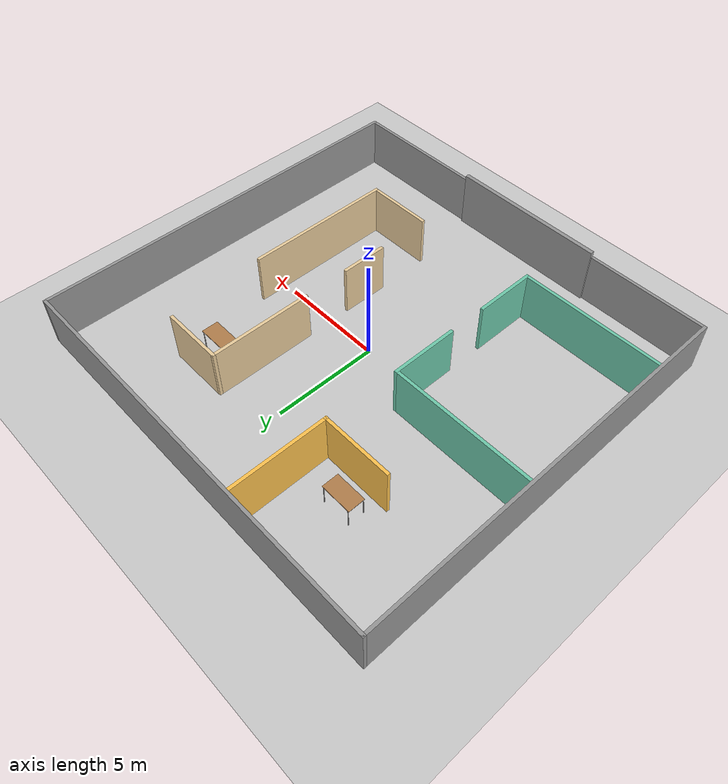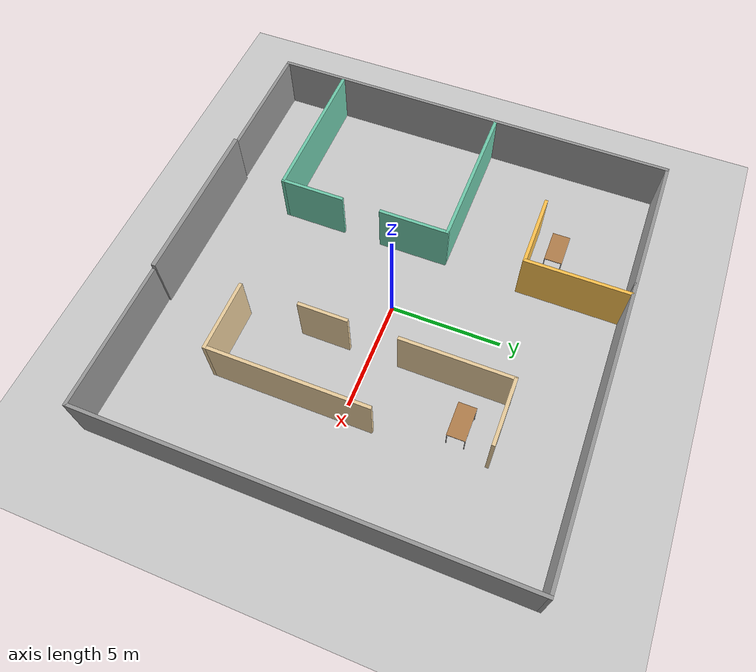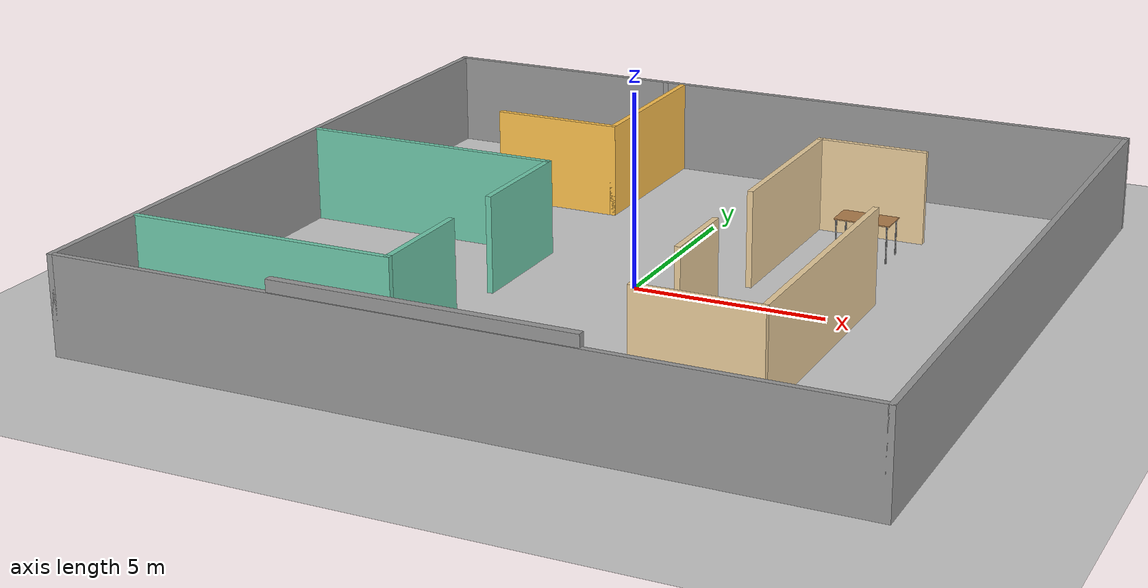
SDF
<sdf version="1.6">
 <world name="building">
  <light name="sun" type="directional">
   <pose>0 0 10 0 -0 0</pose>
   <diffuse>0.8 0.8 0.8 1</diffuse>
   <specular>0.2 0.2 0.2 1</specular>
   <attenuation>
    <range>1000</range>
    <constant>0.9</constant>
    <linear>0.01</linear>
    <quadratic>0.001</quadratic>
   </attenuation>
   <direction>-0.5 0.1 -0.9</direction>
  </light>
  <model name="ground_plane">
   <static>1</static>
   <link name="link">
    <collision name="collision">
     <geometry><plane><normal>0 0 1</normal><size>100 100</size></plane></geometry>
     <surface><friction><ode><mu>100</mu><mu2>50</mu2></ode></friction></surface>
    </collision>
    <visual name="visual">
     <cast_shadows>0</cast_shadows>
     <geometry><plane><normal>0 0 1</normal><size>100 100</size></plane></geometry>
     <material>
      <script><uri>file://media/materials/scripts/gazebo.material</uri><name>Gazebo/Grey</name></script>
     </material>
    </visual>
   </link>
  </model>
  <gravity>0 0 -9.8</gravity>
  <magnetic_field>6e-06 2.3e-05 -4.2e-05</magnetic_field>
  <atmosphere type="adiabatic"/>
  <physics name="default_physics" default="0" type="ode">
   <max_step_size>0.001</max_step_size>
   <real_time_factor>1</real_time_factor>
   <real_time_update_rate>1000</real_time_update_rate>
  </physics>
  <scene><ambient>0.4 0.4 0.4 1</ambient><background>0.7 0.7 0.7 1</background><shadows>1</shadows></scene>
  <spherical_coordinates>
   <surface_model>EARTH_WGS84</surface_model>
   <latitude_deg>0</latitude_deg>
   <longitude_deg>0</longitude_deg>
   <elevation>0</elevation>
   <heading_deg>0</heading_deg>
  </spherical_coordinates>
  <model name="rooms">
   <pose>-0.113605 0.01714 0 0 -0 0</pose>
   <link name="Wall_10">
    <collision name="Wall_10_Collision">
     <geometry><box><size>20 0.15 2.5</size></box></geometry>
     <pose>0 0 1.25 0 -0 0</pose>
    </collision>
    <visual name="Wall_10_Visual">
     <pose>0 0 1.25 0 -0 0</pose>
     <geometry><box><size>20 0.15 2.5</size></box></geometry>
     <material>
      <script><uri>file://media/materials/scripts/gazebo.material</uri><name>Gazebo/Grey</name></script>
      <ambient>1 1 1 1</ambient>
     </material>
     <meta><layer>0</layer></meta>
    </visual>
    <pose>0 9.55 0 0 -0 3.14159</pose>
   </link>
   <link name="Wall_11">
    <collision name="Wall_11_Collision">
     <geometry><box><size>19.25 0.15 2.5</size></box></geometry>
     <pose>0 0 1.25 0 -0 0</pose>
    </collision>
    <visual name="Wall_11_Visual">
     <pose>0 0 1.25 0 -0 0</pose>
     <geometry><box><size>19.25 0.15 2.5</size></box></geometry>
     <material>
      <script><uri>file://media/materials/scripts/gazebo.material</uri><name>Gazebo/Grey</name></script>
      <ambient>1 1 1 1</ambient>
     </material>
     <meta><layer>0</layer></meta>
    </visual>
    <pose>-9.925 0 0 0 0 -1.5708</pose>
   </link>
   <link name="Wall_13">
    <collision name="Wall_13_Collision">
     <geometry><box><size>20 0.15 2.5</size></box></geometry>
     <pose>0 0 1.25 0 -0 0</pose>
    </collision>
    <visual name="Wall_13_Visual">
     <pose>0 0 1.25 0 -0 0</pose>
     <geometry><box><size>20 0.15 2.5</size></box></geometry>
     <material>
      <script><uri>file://media/materials/scripts/gazebo.material</uri><name>Gazebo/Grey</name></script>
      <ambient>1 1 1 1</ambient>
     </material>
     <meta><layer>0</layer></meta>
    </visual>
    <pose>0 -9.55 0 0 -0 0</pose>
   </link>
   <link name="Wall_14">
    <collision name="Wall_14_Collision">
     <geometry><box><size>19.25 0.15 2.5</size></box></geometry>
     <pose>0 0 1.25 0 -0 0</pose>
    </collision>
    <visual name="Wall_14_Visual">
     <pose>0 0 1.25 0 -0 0</pose>
     <geometry><box><size>19.25 0.15 2.5</size></box></geometry>
     <material>
      <script><uri>file://media/materials/scripts/gazebo.material</uri><name>Gazebo/Grey</name></script>
      <ambient>1 1 1 1</ambient>
     </material>
     <meta><layer>0</layer></meta>
    </visual>
    <pose>9.925 0 0 0 -0 1.5708</pose>
   </link>
   <link name="Wall_20">
    <collision name="Wall_20_Collision">
     <geometry><box><size>0.15 0.15 2.5</size></box></geometry>
     <pose>0 0 1.25 0 -0 0</pose>
    </collision>
    <visual name="Wall_20_Visual">
     <pose>0 0 1.25 0 -0 0</pose>
     <geometry><box><size>0.15 0.15 2.5</size></box></geometry>
     <material>
      <script><uri>file://media/materials/scripts/gazebo.material</uri><name>Gazebo/Grey</name></script>
      <ambient>1 1 1 1</ambient>
     </material>
     <meta><layer>0</layer></meta>
    </visual>
    <pose>-3.31473 9.54696 0 0 -0 0</pose>
   </link>
   <link name="Wall_22">
    <collision name="Wall_22_Collision">
     <geometry><box><size>3.5 0.15 2.5</size></box></geometry>
     <pose>0 0 1.25 0 -0 0</pose>
    </collision>
    <visual name="Wall_22_Visual">
     <pose>0 0 1.25 0 -0 0</pose>
     <geometry><box><size>3.5 0.15 2.5</size></box></geometry>
     <material>
      <script><uri>file://media/materials/scripts/gazebo.material</uri><name>Gazebo/Grey</name></script>
      <ambient>1 0.764706 0.305882 1</ambient>
     </material>
     <meta><layer>0</layer></meta>
    </visual>
    <pose>-4.46621 4.88306 0 0 -0 0</pose>
   </link>
   <link name="Wall_23">
    <collision name="Wall_23_Collision">
     <geometry><box><size>4.75 0.15 2.5</size></box></geometry>
     <pose>0 0 1.25 0 -0 0</pose>
    </collision>
    <visual name="Wall_23_Visual">
     <pose>0 0 1.25 0 -0 0</pose>
     <geometry><box><size>4.75 0.15 2.5</size></box></geometry>
     <material>
      <script><uri>file://media/materials/scripts/gazebo.material</uri><name>Gazebo/Grey</name></script>
      <ambient>1 0.764706 0.305882 1</ambient>
     </material>
     <meta><layer>0</layer></meta>
    </visual>
    <pose>-2.79121 7.18306 0 0 -0 1.5708</pose>
   </link>
   <link name="Wall_25">
    <collision name="Wall_25_Collision">
     <geometry><box><size>7 0.15 2.5</size></box></geometry>
     <pose>0 0 1.25 0 -0 0</pose>
    </collision>
    <visual name="Wall_25_Visual">
     <pose>0 0 1.25 0 -0 0</pose>
     <geometry><box><size>7 0.15 2.5</size></box></geometry>
     <material>
      <script><uri>file://media/materials/scripts/gazebo.material</uri><name>Gazebo/Grey</name></script>
      <ambient>0.435294 0.796078 0.67451 1</ambient>
     </material>
     <meta><layer>0</layer></meta>
    </visual>
    <pose>-6.3916 1.34724 0 0 -0 0</pose>
   </link>
   <link name="Wall_26">
    <collision name="Wall_26_Collision">
     <geometry><box><size>3.25 0.15 2.5</size></box></geometry>
     <pose>0 0 1.25 0 -0 0</pose>
    </collision>
    <visual name="Wall_26_Visual">
     <pose>0 0 1.25 0 -0 0</pose>
     <geometry><box><size>3.25 0.15 2.5</size></box></geometry>
     <material>
      <script><uri>file://media/materials/scripts/gazebo.material</uri><name>Gazebo/Grey</name></script>
      <ambient>0.435294 0.796078 0.67451 1</ambient>
     </material>
     <meta><layer>0</layer></meta>
    </visual>
    <pose>-2.9666 -0.202758 0 0 0 -1.5708</pose>
   </link>
   <link name="Wall_28">
    <collision name="Wall_28_Collision">
     <geometry><box><size>3 0.15 2.5</size></box></geometry>
     <pose>0 0 1.25 0 -0 0</pose>
    </collision>
    <visual name="Wall_28_Visual">
     <pose>0 0 1.25 0 -0 0</pose>
     <geometry><box><size>3 0.15 2.5</size></box></geometry>
     <material>
      <script><uri>file://media/materials/scripts/gazebo.material</uri><name>Gazebo/Grey</name></script>
      <ambient>0.435294 0.796078 0.67451 1</ambient>
     </material>
     <meta><layer>0</layer></meta>
    </visual>
    <pose>-2.97758 -5.10234 0 0 0 -1.5708</pose>
   </link>
   <link name="Wall_32">
    <collision name="Wall_32_Collision">
     <geometry><box><size>7 0.15 2.5</size></box></geometry>
     <pose>0 0 1.25 0 -0 0</pose>
    </collision>
    <visual name="Wall_32_Visual">
     <pose>0 0 1.25 0 -0 0</pose>
     <geometry><box><size>7 0.15 2.5</size></box></geometry>
     <material>
      <script><uri>file://media/materials/scripts/gazebo.material</uri><name>Gazebo/Grey</name></script>
      <ambient>0.435294 0.796078 0.67451 1</ambient>
     </material>
     <meta><layer>0</layer></meta>
    </visual>
    <pose>-6.40258 -6.52734 0 0 -0 3.14159</pose>
   </link>
   <link name="Wall_34">
    <collision name="Wall_34_Collision">
     <geometry><box><size>3 0.15 2.5</size></box></geometry>
     <pose>0 0 1.25 0 -0 0</pose>
    </collision>
    <visual name="Wall_34_Visual">
     <pose>0 0 1.25 0 -0 0</pose>
     <geometry><box><size>3 0.15 2.5</size></box></geometry>
     <material>
      <script><uri>file://media/materials/scripts/gazebo.material</uri><name>Gazebo/Grey</name></script>
      <ambient>0.921569 0.807843 0.615686 1</ambient>
     </material>
     <meta><layer>0</layer></meta>
    </visual>
    <pose>4.06477 6.1392 0 0 -0 3.14159</pose>
   </link>
   <link name="Wall_35">
    <collision name="Wall_35_Collision">
     <geometry><box><size>5 0.15 2.5</size></box></geometry>
     <pose>0 0 1.25 0 -0 0</pose>
    </collision>
    <visual name="Wall_35_Visual">
     <pose>0 0 1.25 0 -0 0</pose>
     <geometry><box><size>5 0.15 2.5</size></box></geometry>
     <material>
      <script><uri>file://media/materials/scripts/gazebo.material</uri><name>Gazebo/Grey</name></script>
      <ambient>0.921569 0.807843 0.615686 1</ambient>
     </material>
     <meta><layer>0</layer></meta>
    </visual>
    <pose>2.63977 3.71421 0 0 0 -1.5708</pose>
   </link>
   <link name="Wall_37">
    <collision name="Wall_37_Collision">
     <geometry><box><size>7.25 0.15 2.5</size></box></geometry>
     <pose>0 0 1.25 0 -0 0</pose>
    </collision>
    <visual name="Wall_37_Visual">
     <pose>0 0 1.25 0 -0 0</pose>
     <geometry><box><size>7.25 0.15 2.5</size></box></geometry>
     <material>
      <script><uri>file://media/materials/scripts/gazebo.material</uri><name>Gazebo/Grey</name></script>
      <ambient>0.921569 0.807843 0.615686 1</ambient>
     </material>
     <meta><layer>0</layer></meta>
    </visual>
    <pose>5.81544 -2.24928 0 0 0 -1.5708</pose>
   </link>
   <link name="Wall_38">
    <collision name="Wall_38_Collision">
     <geometry><box><size>3.25 0.15 2.5</size></box></geometry>
     <pose>0 0 1.25 0 -0 0</pose>
    </collision>
    <visual name="Wall_38_Visual">
     <pose>0 0 1.25 0 -0 0</pose>
     <geometry><box><size>3.25 0.15 2.5</size></box></geometry>
     <material>
      <script><uri>file://media/materials/scripts/gazebo.material</uri><name>Gazebo/Grey</name></script>
      <ambient>0.921569 0.807843 0.615686 1</ambient>
     </material>
     <meta><layer>0</layer></meta>
    </visual>
    <pose>4.26544 -5.79928 0 0 -0 3.14159</pose>
   </link>
   <link name="Wall_40">
    <collision name="Wall_40_Collision">
     <geometry><box><size>2.25 0.15 2.5</size></box></geometry>
     <pose>0 0 1.25 0 -0 0</pose>
    </collision>
    <visual name="Wall_40_Visual">
     <pose>0 0 1.25 0 -0 0</pose>
     <geometry><box><size>2.25 0.15 2.5</size></box></geometry>
     <material>
      <script><uri>file://media/materials/scripts/gazebo.material</uri><name>Gazebo/Grey</name></script>
      <ambient>0.921569 0.807843 0.615686 1</ambient>
     </material>
     <meta><layer>0</layer></meta>
    </visual>
    <pose>2.65181 -2.07548 0 0 0 -1.5708</pose>
   </link>
   <static>1</static>
  </model>
  <model name="table">
   <static>1</static>
   <link name="link">
    <collision name="surface">
     <pose>0 0 1 0 -0 0</pose>
     <geometry><box><size>1.5 0.8 0.03</size></box></geometry>
     <surface><friction><ode><mu>0.6</mu><mu2>0.6</mu2></ode></friction></surface>
    </collision>
    <visual name="visual1">
     <pose>0 0 1 0 -0 0</pose>
     <geometry><box><size>1.5 0.8 0.03</size></box></geometry>
     <material>
      <script><uri>file://media/materials/scripts/gazebo.material</uri><name>Gazebo/Wood</name></script>
     </material>
    </visual>
    <collision name="front_left_leg">
     <pose>0.68 0.38 0.5 0 -0 0</pose>
     <geometry><cylinder><radius>0.02</radius><length>1</length></cylinder></geometry>
    </collision>
    <visual name="front_left_leg">
     <pose>0.68 0.38 0.5 0 -0 0</pose>
     <geometry><cylinder><radius>0.02</radius><length>1</length></cylinder></geometry>
     <material>
      <script><uri>file://media/materials/scripts/gazebo.material</uri><name>Gazebo/Grey</name></script>
     </material>
    </visual>
    <collision name="front_right_leg">
     <pose>0.68 -0.38 0.5 0 -0 0</pose>
     <geometry><cylinder><radius>0.02</radius><length>1</length></cylinder></geometry>
    </collision>
    <visual name="front_right_leg">
     <pose>0.68 -0.38 0.5 0 -0 0</pose>
     <geometry><cylinder><radius>0.02</radius><length>1</length></cylinder></geometry>
     <material>
      <script><uri>file://media/materials/scripts/gazebo.material</uri><name>Gazebo/Grey</name></script>
     </material>
    </visual>
    <collision name="back_right_leg">
     <pose>-0.68 -0.38 0.5 0 -0 0</pose>
     <geometry><cylinder><radius>0.02</radius><length>1</length></cylinder></geometry>
    </collision>
    <visual name="back_right_leg">
     <pose>-0.68 -0.38 0.5 0 -0 0</pose>
     <geometry><cylinder><radius>0.02</radius><length>1</length></cylinder></geometry>
     <material>
      <script><uri>file://media/materials/scripts/gazebo.material</uri><name>Gazebo/Grey</name></script>
     </material>
    </visual>
    <collision name="back_left_leg">
     <pose>-0.68 0.38 0.5 0 -0 0</pose>
     <geometry><cylinder><radius>0.02</radius><length>1</length></cylinder></geometry>
    </collision>
    <visual name="back_left_leg">
     <pose>-0.68 0.38 0.5 0 -0 0</pose>
     <geometry><cylinder><radius>0.02</radius><length>1</length></cylinder></geometry>
     <material>
      <script><uri>file://media/materials/scripts/gazebo.material</uri><name>Gazebo/Grey</name></script>
     </material>
    </visual>
   </link>
   <pose>-5.06996 6.00619 0 0 -0 0</pose>
  </model>
  <model name="table_0">
   <static>1</static>
   <link name="link">
    <collision name="surface">
     <pose>0 0 1 0 -0 0</pose>
     <geometry><box><size>1.5 0.8 0.03</size></box></geometry>
     <surface><friction><ode><mu>0.6</mu><mu2>0.6</mu2></ode></friction></surface>
    </collision>
    <visual name="visual1">
     <pose>0 0 1 0 -0 0</pose>
     <geometry><box><size>1.5 0.8 0.03</size></box></geometry>
     <material>
      <script><uri>file://media/materials/scripts/gazebo.material</uri><name>Gazebo/Wood</name></script>
     </material>
    </visual>
    <collision name="front_left_leg">
     <pose>0.68 0.38 0.5 0 -0 0</pose>
     <geometry><cylinder><radius>0.02</radius><length>1</length></cylinder></geometry>
    </collision>
    <visual name="front_left_leg">
     <pose>0.68 0.38 0.5 0 -0 0</pose>
     <geometry><cylinder><radius>0.02</radius><length>1</length></cylinder></geometry>
     <material>
      <script><uri>file://media/materials/scripts/gazebo.material</uri><name>Gazebo/Grey</name></script>
     </material>
    </visual>
    <collision name="front_right_leg">
     <pose>0.68 -0.38 0.5 0 -0 0</pose>
     <geometry><cylinder><radius>0.02</radius><length>1</length></cylinder></geometry>
    </collision>
    <visual name="front_right_leg">
     <pose>0.68 -0.38 0.5 0 -0 0</pose>
     <geometry><cylinder><radius>0.02</radius><length>1</length></cylinder></geometry>
     <material>
      <script><uri>file://media/materials/scripts/gazebo.material</uri><name>Gazebo/Grey</name></script>
     </material>
    </visual>
    <collision name="back_right_leg">
     <pose>-0.68 -0.38 0.5 0 -0 0</pose>
     <geometry><cylinder><radius>0.02</radius><length>1</length></cylinder></geometry>
    </collision>
    <visual name="back_right_leg">
     <pose>-0.68 -0.38 0.5 0 -0 0</pose>
     <geometry><cylinder><radius>0.02</radius><length>1</length></cylinder></geometry>
     <material>
      <script><uri>file://media/materials/scripts/gazebo.material</uri><name>Gazebo/Grey</name></script>
     </material>
    </visual>
    <collision name="back_left_leg">
     <pose>-0.68 0.38 0.5 0 -0 0</pose>
     <geometry><cylinder><radius>0.02</radius><length>1</length></cylinder></geometry>
    </collision>
    <visual name="back_left_leg">
     <pose>-0.68 0.38 0.5 0 -0 0</pose>
     <geometry><cylinder><radius>0.02</radius><length>1</length></cylinder></geometry>
     <material>
      <script><uri>file://media/materials/scripts/gazebo.material</uri><name>Gazebo/Grey</name></script>
     </material>
    </visual>
   </link>
   <pose>4.36887 4.6785 0 0 -0 0</pose>
  </model>
  <model name="grey_wall">
   <static>1</static>
   <link name="link">
    <pose>0 0 1.4 0 -0 0</pose>
    <collision name="collision"><geometry><box><size>7.5 0.2 2.8</size></box></geometry></collision>
    <visual name="visual">
     <cast_shadows>0</cast_shadows>
     <geometry><box><size>7.5 0.2 2.8</size></box></geometry>
     <material>
      <script>
       <uri>model://grey_wall/materials/scripts</uri>
       <uri>model://grey_wall/materials/textures</uri>
       <name>vrc/grey_wall</name>
      </script>
     </material>
    </visual>
   </link>
   <pose>-0.528462 -9.47274 0 0 -0 0</pose>
  </model>
 </world>
</sdf>
